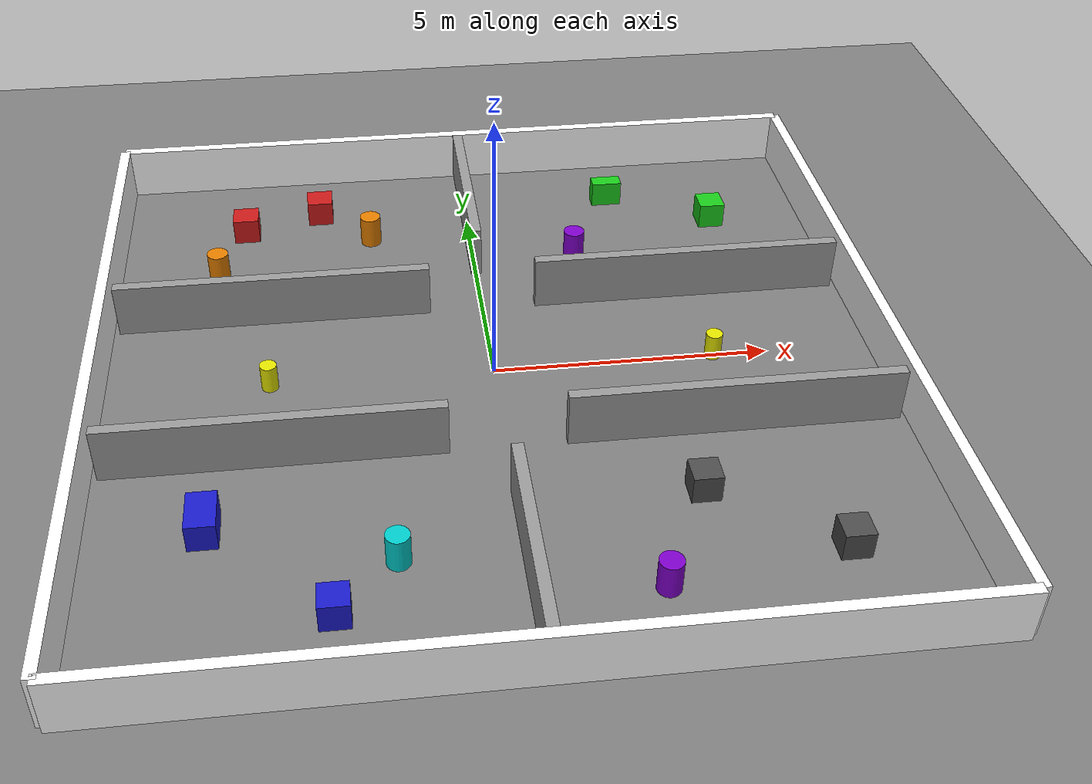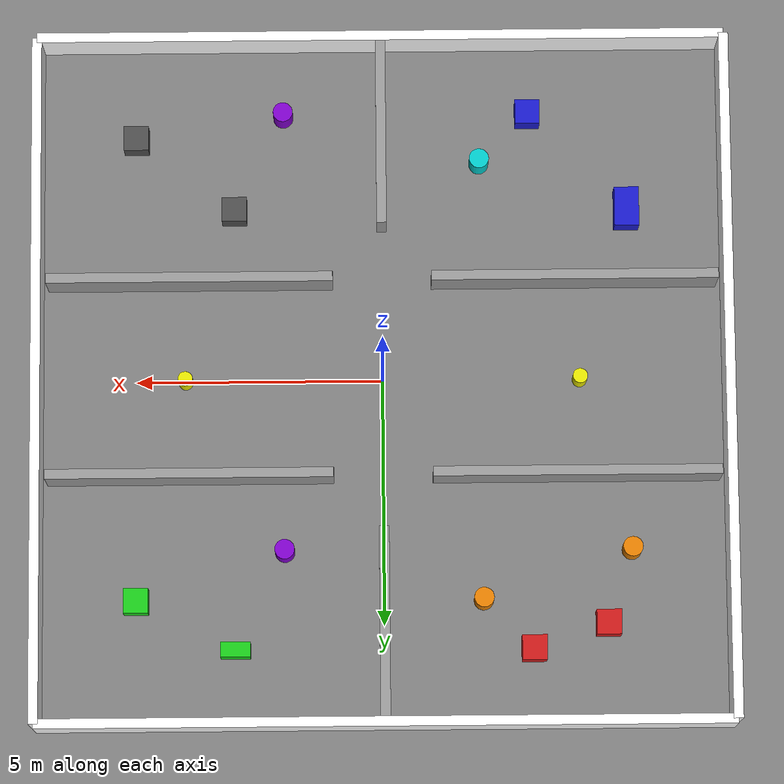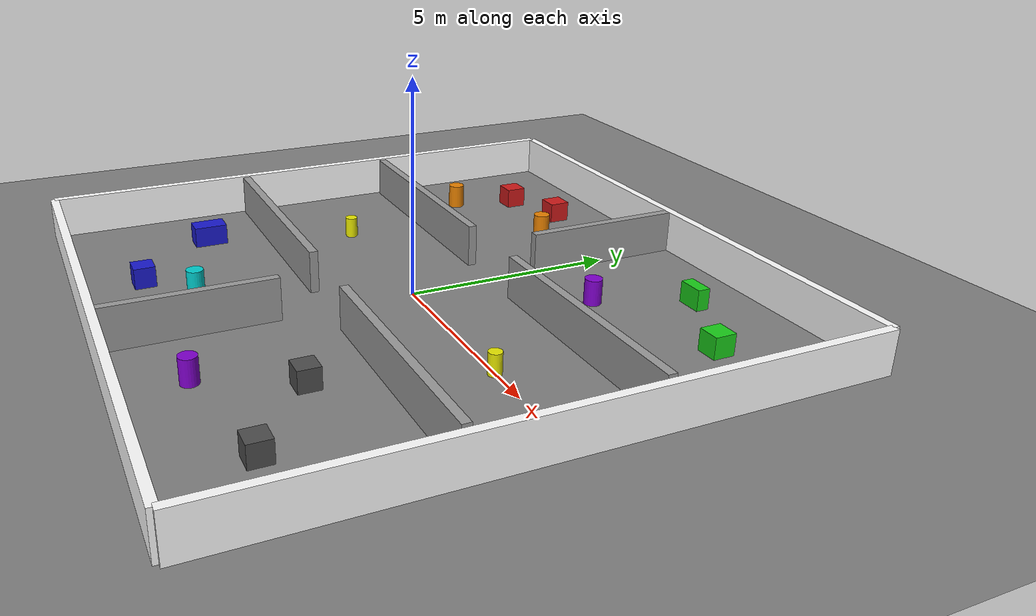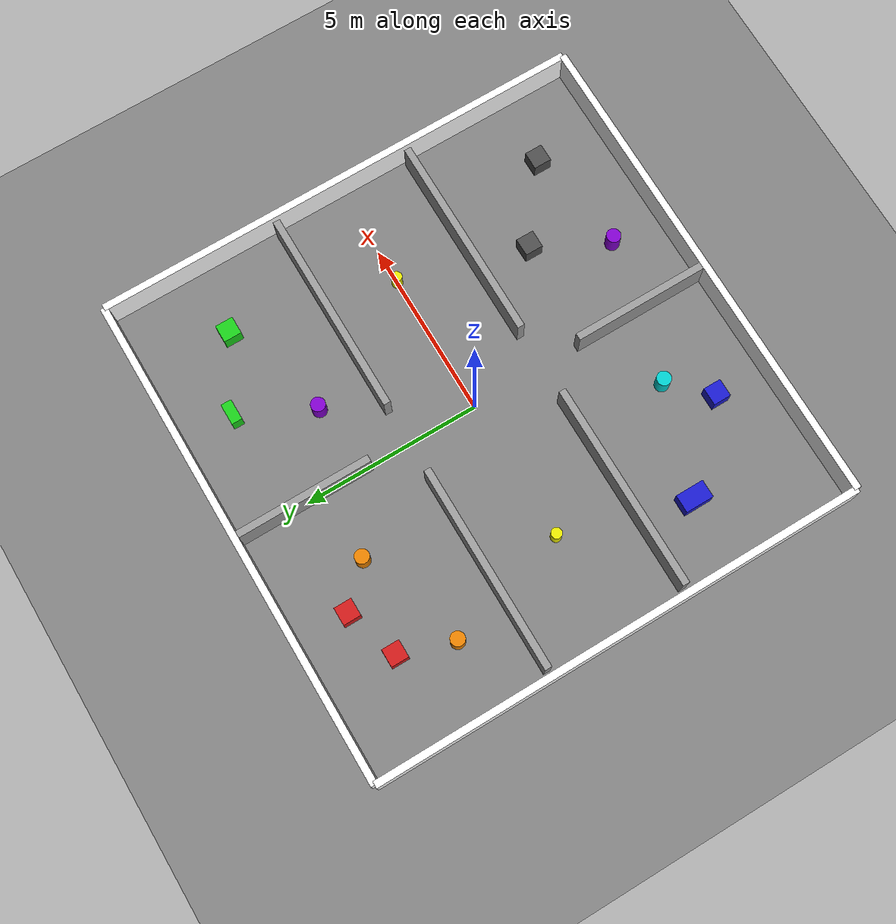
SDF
<?xml version="1.0" ?>
<sdf version="1.6">
  <world name="exploration_world">

    <light name="sun" type="directional">
      <cast_shadows>true</cast_shadows>
      <pose>0 0 10 0 0 0</pose>
      <diffuse>0.8 0.8 0.8 1</diffuse>
      <specular>0.2 0.2 0.2 1</specular>
      <direction>-0.5 0.1 -0.9</direction>
    </light>

    <model name="ground_plane">
      <static>true</static>
      <link name="link">
        <collision name="collision">
          <geometry>
            <plane><normal>0 0 1</normal><size>50 50</size></plane>
          </geometry>
        </collision>
        <visual name="visual">
          <geometry>
            <plane><normal>0 0 1</normal><size>50 50</size></plane>
          </geometry>
          <material>
            <ambient>0.5 0.5 0.5 1</ambient>
            <diffuse>0.5 0.5 0.5 1</diffuse>
          </material>
        </visual>
      </link>
    </model>

    <!-- OUTER BOUNDARY WALLS 14x14m arena -->
    <model name="wall_north">
      <static>true</static>
      <pose>0 7 0.5 0 0 0</pose>
      <link name="link">
        <collision name="collision">
          <geometry><box><size>14 0.2 1.0</size></box></geometry>
        </collision>
        <visual name="visual">
          <geometry><box><size>14 0.2 1.0</size></box></geometry>
          <material><ambient>1 1 1 1</ambient><diffuse>1 1 1 1</diffuse></material>
        </visual>
      </link>
    </model>

    <model name="wall_south">
      <static>true</static>
      <pose>0 -7 0.5 0 0 0</pose>
      <link name="link">
        <collision name="collision">
          <geometry><box><size>14 0.2 1.0</size></box></geometry>
        </collision>
        <visual name="visual">
          <geometry><box><size>14 0.2 1.0</size></box></geometry>
          <material><ambient>1 1 1 1</ambient><diffuse>1 1 1 1</diffuse></material>
        </visual>
      </link>
    </model>

    <model name="wall_east">
      <static>true</static>
      <pose>7 0 0.5 0 0 0</pose>
      <link name="link">
        <collision name="collision">
          <geometry><box><size>0.2 14 1.0</size></box></geometry>
        </collision>
        <visual name="visual">
          <geometry><box><size>0.2 14 1.0</size></box></geometry>
          <material><ambient>1 1 1 1</ambient><diffuse>1 1 1 1</diffuse></material>
        </visual>
      </link>
    </model>

    <model name="wall_west">
      <static>true</static>
      <pose>-7 0 0.5 0 0 0</pose>
      <link name="link">
        <collision name="collision">
          <geometry><box><size>0.2 14 1.0</size></box></geometry>
        </collision>
        <visual name="visual">
          <geometry><box><size>0.2 14 1.0</size></box></geometry>
          <material><ambient>1 1 1 1</ambient><diffuse>1 1 1 1</diffuse></material>
        </visual>
      </link>
    </model>

    <!-- INTERIOR WALLS with 1.2m wide doorways (robot is 0.35m wide) -->
    <!-- Horizontal wall top — left segment -->
    <model name="wall_h_top_left">
      <static>true</static>
      <pose>-3.9 2 0.5 0 0 0</pose>
      <link name="link">
        <collision name="collision">
          <geometry><box><size>5.8 0.2 1.0</size></box></geometry>
        </collision>
        <visual name="visual">
          <geometry><box><size>5.8 0.2 1.0</size></box></geometry>
          <material><ambient>0.6 0.6 0.6 1</ambient><diffuse>0.6 0.6 0.6 1</diffuse></material>
        </visual>
      </link>
    </model>

    <!-- Horizontal wall top — right segment (1.2m gap in middle for doorway) -->
    <model name="wall_h_top_right">
      <static>true</static>
      <pose>3.9 2 0.5 0 0 0</pose>
      <link name="link">
        <collision name="collision">
          <geometry><box><size>5.8 0.2 1.0</size></box></geometry>
        </collision>
        <visual name="visual">
          <geometry><box><size>5.8 0.2 1.0</size></box></geometry>
          <material><ambient>0.6 0.6 0.6 1</ambient><diffuse>0.6 0.6 0.6 1</diffuse></material>
        </visual>
      </link>
    </model>

    <!-- Horizontal wall bottom — left segment -->
    <model name="wall_h_bot_left">
      <static>true</static>
      <pose>-3.9 -2 0.5 0 0 0</pose>
      <link name="link">
        <collision name="collision">
          <geometry><box><size>5.8 0.2 1.0</size></box></geometry>
        </collision>
        <visual name="visual">
          <geometry><box><size>5.8 0.2 1.0</size></box></geometry>
          <material><ambient>0.6 0.6 0.6 1</ambient><diffuse>0.6 0.6 0.6 1</diffuse></material>
        </visual>
      </link>
    </model>

    <!-- Horizontal wall bottom — right segment -->
    <model name="wall_h_bot_right">
      <static>true</static>
      <pose>3.9 -2 0.5 0 0 0</pose>
      <link name="link">
        <collision name="collision">
          <geometry><box><size>5.8 0.2 1.0</size></box></geometry>
        </collision>
        <visual name="visual">
          <geometry><box><size>5.8 0.2 1.0</size></box></geometry>
          <material><ambient>0.6 0.6 0.6 1</ambient><diffuse>0.6 0.6 0.6 1</diffuse></material>
        </visual>
      </link>
    </model>

    <!-- Vertical centre wall — top segment (1.2m gap for doorway) -->
    <model name="wall_v_top">
      <static>true</static>
      <pose>0 5.0 0.5 0 0 0</pose>
      <link name="link">
        <collision name="collision">
          <geometry><box><size>0.2 3.8 1.0</size></box></geometry>
        </collision>
        <visual name="visual">
          <geometry><box><size>0.2 3.8 1.0</size></box></geometry>
          <material><ambient>0.6 0.6 0.6 1</ambient><diffuse>0.6 0.6 0.6 1</diffuse></material>
        </visual>
      </link>
    </model>

    <!-- Vertical centre wall — bottom segment -->
    <model name="wall_v_bottom">
      <static>true</static>
      <pose>0 -5.0 0.5 0 0 0</pose>
      <link name="link">
        <collision name="collision">
          <geometry><box><size>0.2 3.8 1.0</size></box></geometry>
        </collision>
        <visual name="visual">
          <geometry><box><size>0.2 3.8 1.0</size></box></geometry>
          <material><ambient>0.6 0.6 0.6 1</ambient><diffuse>0.6 0.6 0.6 1</diffuse></material>
        </visual>
      </link>
    </model>

    <!-- ROOM A obstacles (top-left) -->
    <model name="box_a1">
      <static>true</static>
      <pose>-4.5 5.0 0.25 0 0 0</pose>
      <link name="link">
        <collision name="collision">
          <geometry><box><size>0.5 0.5 0.5</size></box></geometry>
        </collision>
        <visual name="visual">
          <geometry><box><size>0.5 0.5 0.5</size></box></geometry>
          <material><ambient>0.8 0.1 0.1 1</ambient><diffuse>0.8 0.1 0.1 1</diffuse></material>
        </visual>
      </link>
    </model>

    <model name="box_a2">
      <static>true</static>
      <pose>-3.0 5.5 0.25 0 0 0</pose>
      <link name="link">
        <collision name="collision">
          <geometry><box><size>0.5 0.5 0.5</size></box></geometry>
        </collision>
        <visual name="visual">
          <geometry><box><size>0.5 0.5 0.5</size></box></geometry>
          <material><ambient>0.8 0.1 0.1 1</ambient><diffuse>0.8 0.1 0.1 1</diffuse></material>
        </visual>
      </link>
    </model>

    <model name="cylinder_a1">
      <static>true</static>
      <pose>-2.0 4.5 0.3 0 0 0</pose>
      <link name="link">
        <collision name="collision">
          <geometry><cylinder><radius>0.2</radius><length>0.6</length></cylinder></geometry>
        </collision>
        <visual name="visual">
          <geometry><cylinder><radius>0.2</radius><length>0.6</length></cylinder></geometry>
          <material><ambient>0.9 0.5 0.0 1</ambient><diffuse>0.9 0.5 0.0 1</diffuse></material>
        </visual>
      </link>
    </model>

    <model name="cylinder_a2">
      <static>true</static>
      <pose>-5.0 3.5 0.3 0 0 0</pose>
      <link name="link">
        <collision name="collision">
          <geometry><cylinder><radius>0.2</radius><length>0.6</length></cylinder></geometry>
        </collision>
        <visual name="visual">
          <geometry><cylinder><radius>0.2</radius><length>0.6</length></cylinder></geometry>
          <material><ambient>0.9 0.5 0.0 1</ambient><diffuse>0.9 0.5 0.0 1</diffuse></material>
        </visual>
      </link>
    </model>

    <!-- ROOM B obstacles (top-right) -->
    <model name="box_b1">
      <static>true</static>
      <pose>3.0 5.5 0.25 0 0 0</pose>
      <link name="link">
        <collision name="collision">
          <geometry><box><size>0.6 0.3 0.5</size></box></geometry>
        </collision>
        <visual name="visual">
          <geometry><box><size>0.6 0.3 0.5</size></box></geometry>
          <material><ambient>0.1 0.8 0.1 1</ambient><diffuse>0.1 0.8 0.1 1</diffuse></material>
        </visual>
      </link>
    </model>

    <model name="box_b2">
      <static>true</static>
      <pose>5.0 4.5 0.25 0 0 0</pose>
      <link name="link">
        <collision name="collision">
          <geometry><box><size>0.5 0.5 0.5</size></box></geometry>
        </collision>
        <visual name="visual">
          <geometry><box><size>0.5 0.5 0.5</size></box></geometry>
          <material><ambient>0.1 0.8 0.1 1</ambient><diffuse>0.1 0.8 0.1 1</diffuse></material>
        </visual>
      </link>
    </model>

    <model name="cylinder_b1">
      <static>true</static>
      <pose>2.0 3.5 0.3 0 0 0</pose>
      <link name="link">
        <collision name="collision">
          <geometry><cylinder><radius>0.2</radius><length>0.6</length></cylinder></geometry>
        </collision>
        <visual name="visual">
          <geometry><cylinder><radius>0.2</radius><length>0.6</length></cylinder></geometry>
          <material><ambient>0.5 0.0 0.8 1</ambient><diffuse>0.5 0.0 0.8 1</diffuse></material>
        </visual>
      </link>
    </model>

    <!-- CORRIDOR obstacles (centre, sparse so robot can pass) -->
    <model name="post_c1">
      <static>true</static>
      <pose>-4.0 0.0 0.25 0 0 0</pose>
      <link name="link">
        <collision name="collision">
          <geometry><cylinder><radius>0.15</radius><length>0.5</length></cylinder></geometry>
        </collision>
        <visual name="visual">
          <geometry><cylinder><radius>0.15</radius><length>0.5</length></cylinder></geometry>
          <material><ambient>0.9 0.9 0.0 1</ambient><diffuse>0.9 0.9 0.0 1</diffuse></material>
        </visual>
      </link>
    </model>

    <model name="post_c2">
      <static>true</static>
      <pose>4.0 0.0 0.25 0 0 0</pose>
      <link name="link">
        <collision name="collision">
          <geometry><cylinder><radius>0.15</radius><length>0.5</length></cylinder></geometry>
        </collision>
        <visual name="visual">
          <geometry><cylinder><radius>0.15</radius><length>0.5</length></cylinder></geometry>
          <material><ambient>0.9 0.9 0.0 1</ambient><diffuse>0.9 0.9 0.0 1</diffuse></material>
        </visual>
      </link>
    </model>

    <!-- ROOM C obstacles (bottom-left) -->
    <model name="box_c1">
      <static>true</static>
      <pose>-5.0 -3.5 0.25 0 0 0</pose>
      <link name="link">
        <collision name="collision">
          <geometry><box><size>0.5 0.8 0.5</size></box></geometry>
        </collision>
        <visual name="visual">
          <geometry><box><size>0.5 0.8 0.5</size></box></geometry>
          <material><ambient>0.1 0.1 0.8 1</ambient><diffuse>0.1 0.1 0.8 1</diffuse></material>
        </visual>
      </link>
    </model>

    <model name="box_c2">
      <static>true</static>
      <pose>-3.0 -5.5 0.25 0 0 0</pose>
      <link name="link">
        <collision name="collision">
          <geometry><box><size>0.5 0.5 0.5</size></box></geometry>
        </collision>
        <visual name="visual">
          <geometry><box><size>0.5 0.5 0.5</size></box></geometry>
          <material><ambient>0.1 0.1 0.8 1</ambient><diffuse>0.1 0.1 0.8 1</diffuse></material>
        </visual>
      </link>
    </model>

    <model name="cylinder_c1">
      <static>true</static>
      <pose>-2.0 -4.5 0.3 0 0 0</pose>
      <link name="link">
        <collision name="collision">
          <geometry><cylinder><radius>0.2</radius><length>0.6</length></cylinder></geometry>
        </collision>
        <visual name="visual">
          <geometry><cylinder><radius>0.2</radius><length>0.6</length></cylinder></geometry>
          <material><ambient>0.0 0.8 0.8 1</ambient><diffuse>0.0 0.8 0.8 1</diffuse></material>
        </visual>
      </link>
    </model>

    <!-- ROOM D obstacles (bottom-right) -->
    <model name="box_d1">
      <static>true</static>
      <pose>3.0 -3.5 0.25 0 0 0</pose>
      <link name="link">
        <collision name="collision">
          <geometry><box><size>0.5 0.5 0.5</size></box></geometry>
        </collision>
        <visual name="visual">
          <geometry><box><size>0.5 0.5 0.5</size></box></geometry>
          <material><ambient>0.3 0.3 0.3 1</ambient><diffuse>0.3 0.3 0.3 1</diffuse></material>
        </visual>
      </link>
    </model>

    <model name="box_d2">
      <static>true</static>
      <pose>5.0 -5.0 0.25 0 0 0</pose>
      <link name="link">
        <collision name="collision">
          <geometry><box><size>0.5 0.5 0.5</size></box></geometry>
        </collision>
        <visual name="visual">
          <geometry><box><size>0.5 0.5 0.5</size></box></geometry>
          <material><ambient>0.3 0.3 0.3 1</ambient><diffuse>0.3 0.3 0.3 1</diffuse></material>
        </visual>
      </link>
    </model>

    <model name="cylinder_d1">
      <static>true</static>
      <pose>2.0 -5.5 0.3 0 0 0</pose>
      <link name="link">
        <collision name="collision">
          <geometry><cylinder><radius>0.2</radius><length>0.6</length></cylinder></geometry>
        </collision>
        <visual name="visual">
          <geometry><cylinder><radius>0.2</radius><length>0.6</length></cylinder></geometry>
          <material><ambient>0.5 0.0 0.8 1</ambient><diffuse>0.5 0.0 0.8 1</diffuse></material>
        </visual>
      </link>
    </model>

    <scene>
      <ambient>0.4 0.4 0.4 1</ambient>
      <background>0.7 0.7 0.7 1</background>
      <shadows>true</shadows>
    </scene>

    <gravity>0 0 -9.81</gravity>

  </world>
</sdf>
EOF
